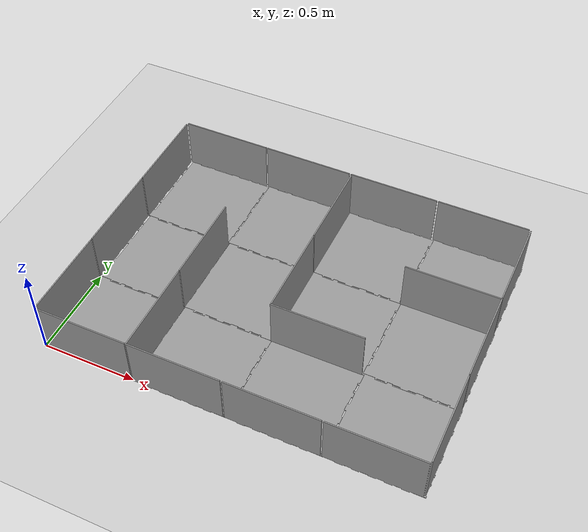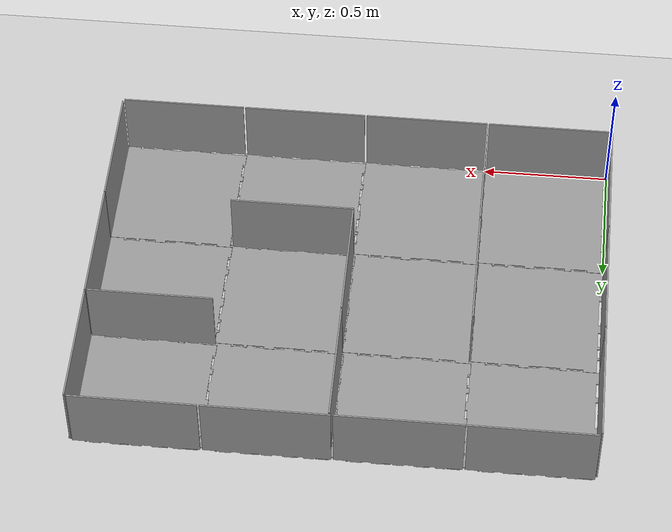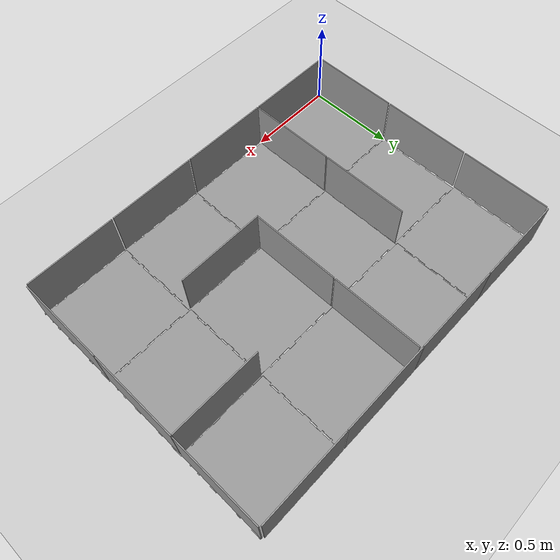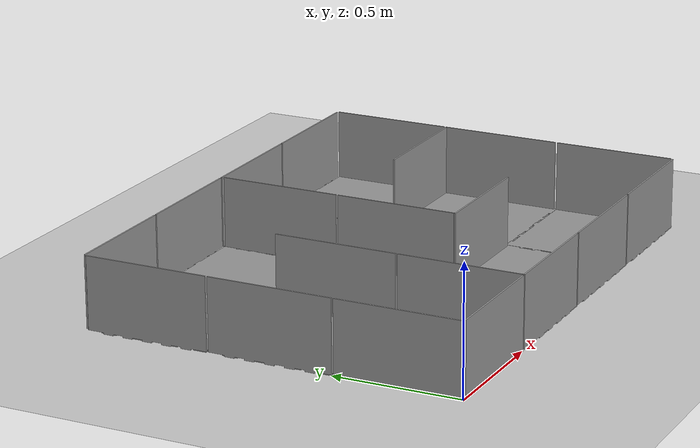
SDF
<sdf version="1.6">
 <world name="default">
  <light name="sun" type="directional">
   <pose>0 0 10 0 -0 0</pose>
   <diffuse>0.8 0.8 0.8 1</diffuse>
   <specular>0.2 0.2 0.2 1</specular>
   <attenuation>
    <range>1000</range>
    <constant>0.9</constant>
    <linear>0.01</linear>
    <quadratic>0.001</quadratic>
   </attenuation>
   <direction>-0.5 0.1 -0.9</direction>
  </light>
  <model name="ground_plane">
   <static>1</static>
   <link name="link">
    <collision name="collision">
     <geometry><plane><normal>0 0 1</normal><size>100 100</size></plane></geometry>
     <surface><friction><ode><mu>100</mu><mu2>50</mu2></ode></friction></surface>
    </collision>
    <visual name="visual">
     <cast_shadows>0</cast_shadows>
     <geometry><plane><normal>0 0 1</normal><size>100 100</size></plane></geometry>
     <material>
      <script><uri>file://media/materials/scripts/gazebo.material</uri><name>Gazebo/Grey</name></script>
     </material>
    </visual>
   </link>
  </model>
  <gravity>0 0 -9.8</gravity>
  <magnetic_field>6e-06 2.3e-05 -4.2e-05</magnetic_field>
  <atmosphere type="adiabatic"/>
  <physics name="default_physics" default="0" type="ode">
   <max_step_size>0.001</max_step_size>
   <real_time_factor>1</real_time_factor>
   <real_time_update_rate>1000</real_time_update_rate>
  </physics>
  <scene><ambient>0.4 0.4 0.4 1</ambient><background>0.7 0.7 0.7 1</background><shadows>1</shadows></scene>
  <audio><device>default</device></audio>
  <spherical_coordinates>
   <surface_model>EARTH_WGS84</surface_model>
   <latitude_deg>0</latitude_deg>
   <longitude_deg>0</longitude_deg>
   <elevation>0</elevation>
   <heading_deg>0</heading_deg>
  </spherical_coordinates>
  <model name="bug_2_maze">
   <link name="Wall_0">
    <collision name="Wall_0_Collision">
     <geometry><mesh><uri>model://maze/wall.stl</uri><scale>0.001 0.001 0.001</scale></mesh></geometry>
    </collision>
    <visual name="Wall_0_Visual">
     <geometry><mesh><uri>model://maze/wall.stl</uri><scale>0.001 0.001 0.001</scale></mesh></geometry>
     <material>
      <script><uri>file://media/materials/scripts/gazebo.material</uri><name>Gazebo/Grey</name></script>
      <ambient>1 1 1 1</ambient>
     </material>
     <meta><layer>0</layer></meta>
    </visual>
    <pose>0 0 0.006 1.57079633 0 0</pose>
   </link>
   <link name="Wall_1">
    <collision name="Wall_1_Collision">
     <geometry><mesh><uri>model://maze/wall.stl</uri><scale>0.001 0.001 0.001</scale></mesh></geometry>
    </collision>
    <visual name="Wall_1_Visual">
     <geometry><mesh><uri>model://maze/wall.stl</uri><scale>0.001 0.001 0.001</scale></mesh></geometry>
     <material>
      <script><uri>file://media/materials/scripts/gazebo.material</uri><name>Gazebo/Grey</name></script>
      <ambient>1 1 1 1</ambient>
     </material>
     <meta><layer>0</layer></meta>
    </visual>
    <pose>0.496 0 0.006 1.57079633 -0 0</pose>
   </link>
   <link name="Wall_2">
    <collision name="Wall_2_Collision">
     <geometry><mesh><uri>model://maze/wall.stl</uri><scale>0.001 0.001 0.001</scale></mesh></geometry>
    </collision>
    <visual name="Wall_2_Visual">
     <geometry><mesh><uri>model://maze/wall.stl</uri><scale>0.001 0.001 0.001</scale></mesh></geometry>
     <material>
      <script><uri>file://media/materials/scripts/gazebo.material</uri><name>Gazebo/Grey</name></script>
      <ambient>1 1 1 1</ambient>
     </material>
     <meta><layer>0</layer></meta>
    </visual>
    <pose>0.992 0 0.006 1.57079633 -0 0</pose>
   </link>
   <link name="Wall_3">
    <collision name="Wall_3_Collision">
     <geometry><mesh><uri>model://maze/wall.stl</uri><scale>0.001 0.001 0.001</scale></mesh></geometry>
    </collision>
    <visual name="Wall_3_Visual">
     <geometry><mesh><uri>model://maze/wall.stl</uri><scale>0.001 0.001 0.001</scale></mesh></geometry>
     <material>
      <script><uri>file://media/materials/scripts/gazebo.material</uri><name>Gazebo/Grey</name></script>
      <ambient>1 1 1 1</ambient>
     </material>
     <meta><layer>0</layer></meta>
    </visual>
    <pose>1.488 0 0.006 1.57079633 -0 0</pose>
   </link>
   <link name="Wall_4">
    <collision name="Wall_4_Collision">
     <geometry><mesh><uri>model://maze/wall.stl</uri><scale>0.001 0.001 0.001</scale></mesh></geometry>
    </collision>
    <visual name="Wall_4_Visual">
     <geometry><mesh><uri>model://maze/wall.stl</uri><scale>0.001 0.001 0.001</scale></mesh></geometry>
     <material>
      <script><uri>file://media/materials/scripts/gazebo.material</uri><name>Gazebo/Grey</name></script>
      <ambient>1 1 1 1</ambient>
     </material>
     <meta><layer>0</layer></meta>
    </visual>
    <pose>1.984 0 0.006 1.57079633 -0 1.57079633</pose>
   </link>
   <link name="Wall_5">
    <collision name="Wall_5_Collision">
     <geometry><mesh><uri>model://maze/wall.stl</uri><scale>0.001 0.001 0.001</scale></mesh></geometry>
    </collision>
    <visual name="Wall_5_Visual">
     <geometry><mesh><uri>model://maze/wall.stl</uri><scale>0.001 0.001 0.001</scale></mesh></geometry>
     <material>
      <script><uri>file://media/materials/scripts/gazebo.material</uri><name>Gazebo/Grey</name></script>
      <ambient>1 1 1 1</ambient>
     </material>
     <meta><layer>0</layer></meta>
    </visual>
    <pose>1.984 0.496 0.006 1.57079633 -0 1.57079633</pose>
   </link>
   <link name="Wall_6">
    <collision name="Wall_6_Collision">
     <geometry><mesh><uri>model://maze/wall.stl</uri><scale>0.001 0.001 0.001</scale></mesh></geometry>
    </collision>
    <visual name="Wall_6_Visual">
     <geometry><mesh><uri>model://maze/wall.stl</uri><scale>0.001 0.001 0.001</scale></mesh></geometry>
     <material>
      <script><uri>file://media/materials/scripts/gazebo.material</uri><name>Gazebo/Grey</name></script>
      <ambient>1 1 1 1</ambient>
     </material>
     <meta><layer>0</layer></meta>
    </visual>
    <pose>1.984 0.992 0.006 1.57079633 -0 1.57079633</pose>
   </link>
   <link name="Wall_7">
    <collision name="Wall_7_Collision">
     <geometry><mesh><uri>model://maze/wall.stl</uri><scale>0.001 0.001 0.001</scale></mesh></geometry>
    </collision>
    <visual name="Wall_7_Visual">
     <geometry><mesh><uri>model://maze/wall.stl</uri><scale>0.001 0.001 0.001</scale></mesh></geometry>
     <material>
      <script><uri>file://media/materials/scripts/gazebo.material</uri><name>Gazebo/Grey</name></script>
      <ambient>1 1 1 1</ambient>
     </material>
     <meta><layer>0</layer></meta>
    </visual>
    <pose>1.984 1.488 0.006 1.57079633 -0 3.14159</pose>
   </link>
   <link name="Wall_8">
    <collision name="Wall_8_Collision">
     <geometry><mesh><uri>model://maze/wall.stl</uri><scale>0.001 0.001 0.001</scale></mesh></geometry>
    </collision>
    <visual name="Wall_8_Visual">
     <geometry><mesh><uri>model://maze/wall.stl</uri><scale>0.001 0.001 0.001</scale></mesh></geometry>
     <material>
      <script><uri>file://media/materials/scripts/gazebo.material</uri><name>Gazebo/Grey</name></script>
      <ambient>1 1 1 1</ambient>
     </material>
     <meta><layer>0</layer></meta>
    </visual>
    <pose>1.488 1.488 0.006 1.57079633 -0 3.14159</pose>
   </link>
   <link name="Wall_9">
    <collision name="Wall_9_Collision">
     <geometry><mesh><uri>model://maze/wall.stl</uri><scale>0.001 0.001 0.001</scale></mesh></geometry>
    </collision>
    <visual name="Wall_9_Visual">
     <geometry><mesh><uri>model://maze/wall.stl</uri><scale>0.001 0.001 0.001</scale></mesh></geometry>
     <material>
      <script><uri>file://media/materials/scripts/gazebo.material</uri><name>Gazebo/Grey</name></script>
      <ambient>1 1 1 1</ambient>
     </material>
     <meta><layer>0</layer></meta>
    </visual>
    <pose>0.992 1.488 0.006 1.57079633 -0 3.14159</pose>
   </link>
   <link name="Wall_10">
    <collision name="Wall_10_Collision">
     <geometry><mesh><uri>model://maze/wall.stl</uri><scale>0.001 0.001 0.001</scale></mesh></geometry>
    </collision>
    <visual name="Wall_10_Visual">
     <geometry><mesh><uri>model://maze/wall.stl</uri><scale>0.001 0.001 0.001</scale></mesh></geometry>
     <material>
      <script><uri>file://media/materials/scripts/gazebo.material</uri><name>Gazebo/Grey</name></script>
      <ambient>1 1 1 1</ambient>
     </material>
     <meta><layer>0</layer></meta>
    </visual>
    <pose>0.496 1.488 0.006 1.57079633 -0 3.14159</pose>
   </link>
   <link name="Wall_11">
    <collision name="Wall_11_Collision">
     <geometry><mesh><uri>model://maze/wall.stl</uri><scale>0.001 0.001 0.001</scale></mesh></geometry>
    </collision>
    <visual name="Wall_11_Visual">
     <geometry><mesh><uri>model://maze/wall.stl</uri><scale>0.001 0.001 0.001</scale></mesh></geometry>
     <material>
      <script><uri>file://media/materials/scripts/gazebo.material</uri><name>Gazebo/Grey</name></script>
      <ambient>1 1 1 1</ambient>
     </material>
     <meta><layer>0</layer></meta>
    </visual>
    <pose>0 1.488 0.006 1.57079633 -0 4.71238</pose>
   </link>
   <link name="Wall_12">
    <collision name="Wall_12_Collision">
     <geometry><mesh><uri>model://maze/wall.stl</uri><scale>0.001 0.001 0.001</scale></mesh></geometry>
    </collision>
    <visual name="Wall_12_Visual">
     <geometry><mesh><uri>model://maze/wall.stl</uri><scale>0.001 0.001 0.001</scale></mesh></geometry>
     <material>
      <script><uri>file://media/materials/scripts/gazebo.material</uri><name>Gazebo/Grey</name></script>
      <ambient>1 1 1 1</ambient>
     </material>
     <meta><layer>0</layer></meta>
    </visual>
    <pose>0 0.992 0.006 1.57079633 -0 4.71238</pose>
   </link>
   <link name="Wall_13">
    <collision name="Wall_13_Collision">
     <geometry><mesh><uri>model://maze/wall.stl</uri><scale>0.001 0.001 0.001</scale></mesh></geometry>
    </collision>
    <visual name="Wall_13_Visual">
     <geometry><mesh><uri>model://maze/wall.stl</uri><scale>0.001 0.001 0.001</scale></mesh></geometry>
     <material>
      <script><uri>file://media/materials/scripts/gazebo.material</uri><name>Gazebo/Grey</name></script>
      <ambient>1 1 1 1</ambient>
     </material>
     <meta><layer>0</layer></meta>
    </visual>
    <pose>0 0.496 0.006 1.57079633 -0 4.71238</pose>
   </link>
   <link name="Wall_14">
    <collision name="Wall_14_Collision">
     <geometry><mesh><uri>model://maze/wall.stl</uri><scale>0.001 0.001 0.001</scale></mesh></geometry>
    </collision>
    <visual name="Wall_14_Visual">
     <geometry><mesh><uri>model://maze/wall.stl</uri><scale>0.001 0.001 0.001</scale></mesh></geometry>
     <material>
      <script><uri>file://media/materials/scripts/gazebo.material</uri><name>Gazebo/Grey</name></script>
      <ambient>1 1 1 1</ambient>
     </material>
     <meta><layer>0</layer></meta>
    </visual>
    <pose>0.504 0.496 0.006 1.57079633 -0 4.71238</pose>
   </link>
   <link name="Wall_15">
    <collision name="Wall_15_Collision">
     <geometry><mesh><uri>model://maze/wall.stl</uri><scale>0.001 0.001 0.001</scale></mesh></geometry>
    </collision>
    <visual name="Wall_15_Visual">
     <geometry><mesh><uri>model://maze/wall.stl</uri><scale>0.001 0.001 0.001</scale></mesh></geometry>
     <material>
      <script><uri>file://media/materials/scripts/gazebo.material</uri><name>Gazebo/Grey</name></script>
      <ambient>1 1 1 1</ambient>
     </material>
     <meta><layer>0</layer></meta>
    </visual>
    <pose>0.504 0.992 0.006 1.57079633 -0 4.71238</pose>
   </link>
   <link name="Wall_16">
    <collision name="Wall_16_Collision">
     <geometry><mesh><uri>model://maze/wall.stl</uri><scale>0.001 0.001 0.001</scale></mesh></geometry>
    </collision>
    <visual name="Wall_16_Visual">
     <geometry><mesh><uri>model://maze/wall.stl</uri><scale>0.001 0.001 0.001</scale></mesh></geometry>
     <material>
      <script><uri>file://media/materials/scripts/gazebo.material</uri><name>Gazebo/Grey</name></script>
      <ambient>1 1 1 1</ambient>
     </material>
     <meta><layer>0</layer></meta>
    </visual>
    <pose>1.004 0.992 0.006 1.57079633 -0 4.71238</pose>
   </link>
   <link name="Wall_17">
    <collision name="Wall_17_Collision">
     <geometry><mesh><uri>model://maze/wall.stl</uri><scale>0.001 0.001 0.001</scale></mesh></geometry>
    </collision>
    <visual name="Wall_17_Visual">
     <geometry><mesh><uri>model://maze/wall.stl</uri><scale>0.001 0.001 0.001</scale></mesh></geometry>
     <material>
      <script><uri>file://media/materials/scripts/gazebo.material</uri><name>Gazebo/Grey</name></script>
      <ambient>1 1 1 1</ambient>
     </material>
     <meta><layer>0</layer></meta>
    </visual>
    <pose>1.004 1.488 0.006 1.57079633 -0 4.71238</pose>
   </link>
   <link name="Wall_18">
    <collision name="Wall_18_Collision">
     <geometry><mesh><uri>model://maze/wall.stl</uri><scale>0.001 0.001 0.001</scale></mesh></geometry>
    </collision>
    <visual name="Wall_18_Visual">
     <geometry><mesh><uri>model://maze/wall.stl</uri><scale>0.001 0.001 0.001</scale></mesh></geometry>
     <material>
      <script><uri>file://media/materials/scripts/gazebo.material</uri><name>Gazebo/Grey</name></script>
      <ambient>1 1 1 1</ambient>
     </material>
     <meta><layer>0</layer></meta>
    </visual>
    <pose>0.992 0.496 0.006 1.57079633 -0 0</pose>
   </link>
   <link name="Wall_19">
    <collision name="Wall_19_Collision">
     <geometry><mesh><uri>model://maze/wall.stl</uri><scale>0.001 0.001 0.001</scale></mesh></geometry>
    </collision>
    <visual name="Wall_19_Visual">
     <geometry><mesh><uri>model://maze/wall.stl</uri><scale>0.001 0.001 0.001</scale></mesh></geometry>
     <material>
      <script><uri>file://media/materials/scripts/gazebo.material</uri><name>Gazebo/Grey</name></script>
      <ambient>1 1 1 1</ambient>
     </material>
     <meta><layer>0</layer></meta>
    </visual>
    <pose>1.488 0.992 0.006 1.57079633 -0 0</pose>
   </link>
   <link name="Floor_0">
    <collision name="Floor_0_Collision">
     <geometry><mesh><uri>model://maze/floor.stl</uri><scale>0.001 0.001 0.001</scale></mesh></geometry>
    </collision>
    <visual name="Floor_0_Visual">
     <geometry><mesh><uri>model://maze/floor.stl</uri><scale>0.001 0.001 0.001</scale></mesh></geometry>
     <material>
      <script><uri>file://media/materials/scripts/gazebo.material</uri><name>Gazebo/Grey</name></script>
      <ambient>1 1 1 1</ambient>
     </material>
     <meta><layer>0</layer></meta>
    </visual>
    <pose>0 -0.004 0 0 -0 0</pose>
   </link>
   <link name="Floor_1">
    <collision name="Floor_1_Collision">
     <geometry><mesh><uri>model://maze/floor.stl</uri><scale>0.001 0.001 0.001</scale></mesh></geometry>
    </collision>
    <visual name="Floor_1_Visual">
     <geometry><mesh><uri>model://maze/floor.stl</uri><scale>0.001 0.001 0.001</scale></mesh></geometry>
     <material>
      <script><uri>file://media/materials/scripts/gazebo.material</uri><name>Gazebo/Grey</name></script>
      <ambient>1 1 1 1</ambient>
     </material>
     <meta><layer>0</layer></meta>
    </visual>
    <pose>0.496 -0.004 0 0 -0 0</pose>
   </link>
   <link name="Floor_2">
    <collision name="Floor_2_Collision">
     <geometry><mesh><uri>model://maze/floor.stl</uri><scale>0.001 0.001 0.001</scale></mesh></geometry>
    </collision>
    <visual name="Floor_2_Visual">
     <geometry><mesh><uri>model://maze/floor.stl</uri><scale>0.001 0.001 0.001</scale></mesh></geometry>
     <material>
      <script><uri>file://media/materials/scripts/gazebo.material</uri><name>Gazebo/Grey</name></script>
      <ambient>1 1 1 1</ambient>
     </material>
     <meta><layer>0</layer></meta>
    </visual>
    <pose>0.992 -0.004 0 0 -0 0</pose>
   </link>
   <link name="Floor_3">
    <collision name="Floor_3_Collision">
     <geometry><mesh><uri>model://maze/floor.stl</uri><scale>0.001 0.001 0.001</scale></mesh></geometry>
    </collision>
    <visual name="Floor_3_Visual">
     <geometry><mesh><uri>model://maze/floor.stl</uri><scale>0.001 0.001 0.001</scale></mesh></geometry>
     <material>
      <script><uri>file://media/materials/scripts/gazebo.material</uri><name>Gazebo/Grey</name></script>
      <ambient>1 1 1 1</ambient>
     </material>
     <meta><layer>0</layer></meta>
    </visual>
    <pose>1.488 -0.004 0 0 -0 0</pose>
   </link>
   <link name="Floor_01">
    <collision name="Floor_01_Collision">
     <geometry><mesh><uri>model://maze/floor.stl</uri><scale>0.001 0.001 0.001</scale></mesh></geometry>
    </collision>
    <visual name="Floor_01_Visual">
     <geometry><mesh><uri>model://maze/floor.stl</uri><scale>0.001 0.001 0.001</scale></mesh></geometry>
     <material>
      <script><uri>file://media/materials/scripts/gazebo.material</uri><name>Gazebo/Grey</name></script>
      <ambient>1 1 1 1</ambient>
     </material>
     <meta><layer>0</layer></meta>
    </visual>
    <pose>0 0.492 0 0 -0 0</pose>
   </link>
   <link name="Floor_11">
    <collision name="Floor_11_Collision">
     <geometry><mesh><uri>model://maze/floor.stl</uri><scale>0.001 0.001 0.001</scale></mesh></geometry>
    </collision>
    <visual name="Floor_11_Visual">
     <geometry><mesh><uri>model://maze/floor.stl</uri><scale>0.001 0.001 0.001</scale></mesh></geometry>
     <material>
      <script><uri>file://media/materials/scripts/gazebo.material</uri><name>Gazebo/Grey</name></script>
      <ambient>1 1 1 1</ambient>
     </material>
     <meta><layer>0</layer></meta>
    </visual>
    <pose>0.496 0.492 0 0 -0 0</pose>
   </link>
   <link name="Floor_21">
    <collision name="Floor_21_Collision">
     <geometry><mesh><uri>model://maze/floor.stl</uri><scale>0.001 0.001 0.001</scale></mesh></geometry>
    </collision>
    <visual name="Floor_21_Visual">
     <geometry><mesh><uri>model://maze/floor.stl</uri><scale>0.001 0.001 0.001</scale></mesh></geometry>
     <material>
      <script><uri>file://media/materials/scripts/gazebo.material</uri><name>Gazebo/Grey</name></script>
      <ambient>1 1 1 1</ambient>
     </material>
     <meta><layer>0</layer></meta>
    </visual>
    <pose>0.992 0.492 0 0 -0 0</pose>
   </link>
   <link name="Floor_31">
    <collision name="Floor_31_Collision">
     <geometry><mesh><uri>model://maze/floor.stl</uri><scale>0.001 0.001 0.001</scale></mesh></geometry>
    </collision>
    <visual name="Floor_31_Visual">
     <geometry><mesh><uri>model://maze/floor.stl</uri><scale>0.001 0.001 0.001</scale></mesh></geometry>
     <material>
      <script><uri>file://media/materials/scripts/gazebo.material</uri><name>Gazebo/Grey</name></script>
      <ambient>1 1 1 1</ambient>
     </material>
     <meta><layer>0</layer></meta>
    </visual>
    <pose>1.488 0.492 0 0 -0 0</pose>
   </link>
   <link name="Floor_02">
    <collision name="Floor_02_Collision">
     <geometry><mesh><uri>model://maze/floor.stl</uri><scale>0.001 0.001 0.001</scale></mesh></geometry>
    </collision>
    <visual name="Floor_02_Visual">
     <geometry><mesh><uri>model://maze/floor.stl</uri><scale>0.001 0.001 0.001</scale></mesh></geometry>
     <material>
      <script><uri>file://media/materials/scripts/gazebo.material</uri><name>Gazebo/Grey</name></script>
      <ambient>1 1 1 1</ambient>
     </material>
     <meta><layer>0</layer></meta>
    </visual>
    <pose>0 0.988 0 0 -0 0</pose>
   </link>
   <link name="Floor_12">
    <collision name="Floor_12_Collision">
     <geometry><mesh><uri>model://maze/floor.stl</uri><scale>0.001 0.001 0.001</scale></mesh></geometry>
    </collision>
    <visual name="Floor_12_Visual">
     <geometry><mesh><uri>model://maze/floor.stl</uri><scale>0.001 0.001 0.001</scale></mesh></geometry>
     <material>
      <script><uri>file://media/materials/scripts/gazebo.material</uri><name>Gazebo/Grey</name></script>
      <ambient>1 1 1 1</ambient>
     </material>
     <meta><layer>0</layer></meta>
    </visual>
    <pose>0.496 0.988 0 0 -0 0</pose>
   </link>
   <link name="Floor_22">
    <collision name="Floor_22_Collision">
     <geometry><mesh><uri>model://maze/floor.stl</uri><scale>0.001 0.001 0.001</scale></mesh></geometry>
    </collision>
    <visual name="Floor_22_Visual">
     <geometry><mesh><uri>model://maze/floor.stl</uri><scale>0.001 0.001 0.001</scale></mesh></geometry>
     <material>
      <script><uri>file://media/materials/scripts/gazebo.material</uri><name>Gazebo/Grey</name></script>
      <ambient>1 1 1 1</ambient>
     </material>
     <meta><layer>0</layer></meta>
    </visual>
    <pose>0.992 0.988 0 0 -0 0</pose>
   </link>
   <link name="Floor_32">
    <collision name="Floor_32_Collision">
     <geometry><mesh><uri>model://maze/floor.stl</uri><scale>0.001 0.001 0.001</scale></mesh></geometry>
    </collision>
    <visual name="Floor_32_Visual">
     <geometry><mesh><uri>model://maze/floor.stl</uri><scale>0.001 0.001 0.001</scale></mesh></geometry>
     <material>
      <script><uri>file://media/materials/scripts/gazebo.material</uri><name>Gazebo/Grey</name></script>
      <ambient>1 1 1 1</ambient>
     </material>
     <meta><layer>0</layer></meta>
    </visual>
    <pose>1.488 0.988 0 0 -0 0</pose>
   </link>
   <static>1</static>
  </model>
 </world>
</sdf>
